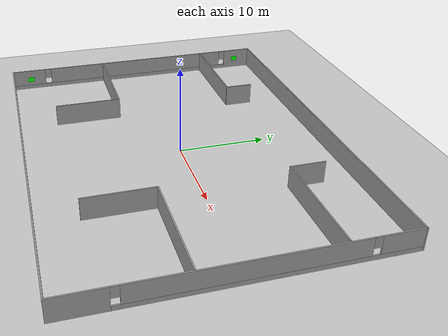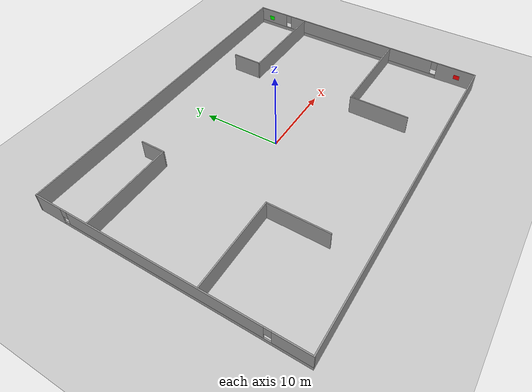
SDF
<sdf version="1.7">
 <world name="default">
  <light name="sun" type="directional">
   <pose>0 0 10 0 -0 0</pose>
   <diffuse>0.8 0.8 0.8 1</diffuse>
   <specular>0.2 0.2 0.2 1</specular>
   <attenuation>
    <range>1000</range>
    <constant>0.9</constant>
    <linear>0.01</linear>
    <quadratic>0.001</quadratic>
   </attenuation>
   <direction>-0.5 0.1 -0.9</direction>
   <spot><inner_angle>0</inner_angle><outer_angle>0</outer_angle><falloff>0</falloff></spot>
  </light>
  <model name="ground_plane">
   <static>1</static>
   <link name="link">
    <collision name="collision">
     <geometry><plane><normal>0 0 1</normal><size>100 100</size></plane></geometry>
     <surface><friction><ode><mu>100</mu><mu2>50</mu2></ode></friction></surface>
    </collision>
    <visual name="visual">
     <cast_shadows>0</cast_shadows>
     <geometry><plane><normal>0 0 1</normal><size>100 100</size></plane></geometry>
     <material>
      <script><uri>file://media/materials/scripts/gazebo.material</uri><name>Gazebo/Grey</name></script>
     </material>
    </visual>
   </link>
  </model>
  <gravity>0 0 -9.8</gravity>
  <magnetic_field>6e-06 2.3e-05 -4.2e-05</magnetic_field>
  <atmosphere type="adiabatic"/>
  <physics type="ode">
   <max_step_size>0.001</max_step_size>
   <real_time_factor>1</real_time_factor>
   <real_time_update_rate>1000</real_time_update_rate>
  </physics>
  <scene><ambient>0.4 0.4 0.4 1</ambient><background>0.7 0.7 0.7 1</background><shadows>1</shadows></scene>
  <audio><device>default</device></audio>
  <spherical_coordinates>
   <surface_model>EARTH_WGS84</surface_model>
   <latitude_deg>0</latitude_deg>
   <longitude_deg>0</longitude_deg>
   <elevation>0</elevation>
   <heading_deg>0</heading_deg>
  </spherical_coordinates>
  <model name="base_factory">
   <pose>0.4434 -0.470209 0 0 0 0</pose>
   <link name="Wall_10">
    <pose>22.175 -1e-06 0 0 -0 1.5708</pose>
    <visual name="Wall_10_Visual_0">
     <pose>-14.1405 0 1.25 0 -0 0</pose>
     <geometry><box><size>5.21896 0.15 2.5</size></box></geometry>
     <material>
      <script><uri>file://media/materials/scripts/gazebo.material</uri><name>Gazebo/Grey</name></script>
      <ambient>1 1 1 1</ambient>
     </material>
     <meta><layer>0</layer></meta>
    </visual>
    <collision name="Wall_10_Collision_0">
     <geometry><box><size>5.21896 0.15 2.5</size></box></geometry>
     <pose>-14.1405 0 1.25 0 -0 0</pose>
    </collision>
    <visual name="Wall_10_Visual_1">
     <pose>2.60948 0 0.25 0 -0 0</pose>
     <geometry><box><size>28.281 0.15 0.5</size></box></geometry>
     <material>
      <script><uri>file://media/materials/scripts/gazebo.material</uri><name>Gazebo/Grey</name></script>
      <ambient>1 1 1 1</ambient>
     </material>
     <meta><layer>0</layer></meta>
    </visual>
    <collision name="Wall_10_Collision_1">
     <geometry><box><size>28.281 0.15 0.5</size></box></geometry>
     <pose>2.60948 0 0.25 0 -0 0</pose>
    </collision>
    <visual name="Wall_10_Visual_2">
     <pose>0.411134 0 1.5 0 -0 0</pose>
     <geometry><box><size>22.2843 0.15 2</size></box></geometry>
     <material>
      <script><uri>file://media/materials/scripts/gazebo.material</uri><name>Gazebo/Grey</name></script>
      <ambient>1 1 1 1</ambient>
     </material>
     <meta><layer>0</layer></meta>
    </visual>
    <collision name="Wall_10_Collision_2">
     <geometry><box><size>22.2843 0.15 2</size></box></geometry>
     <pose>0.411134 0 1.5 0 -0 0</pose>
    </collision>
    <visual name="Wall_10_Visual_3">
     <pose>14.5517 0 1.5 0 -0 0</pose>
     <geometry><box><size>4.39669 0.15 2</size></box></geometry>
     <material>
      <script><uri>file://media/materials/scripts/gazebo.material</uri><name>Gazebo/Grey</name></script>
      <ambient>1 1 1 1</ambient>
     </material>
     <meta><layer>0</layer></meta>
    </visual>
    <collision name="Wall_10_Collision_3">
     <geometry><box><size>4.39669 0.15 2</size></box></geometry>
     <pose>14.5517 0 1.5 0 -0 0</pose>
    </collision>
    <visual name="Wall_10_Visual_4">
     <pose>-11.131 0 1.9 0 -0 0</pose>
     <geometry><box><size>0.8 0.15 1.2</size></box></geometry>
     <material>
      <script><uri>file://media/materials/scripts/gazebo.material</uri><name>Gazebo/Grey</name></script>
      <ambient>1 1 1 1</ambient>
     </material>
     <meta><layer>0</layer></meta>
    </visual>
    <collision name="Wall_10_Collision_4">
     <geometry><box><size>0.8 0.15 1.2</size></box></geometry>
     <pose>-11.131 0 1.9 0 -0 0</pose>
    </collision>
    <visual name="Wall_10_Visual_5">
     <pose>11.9533 0 1.9 0 -0 0</pose>
     <geometry><box><size>0.8 0.15 1.2</size></box></geometry>
     <material>
      <script><uri>file://media/materials/scripts/gazebo.material</uri><name>Gazebo/Grey</name></script>
      <ambient>1 1 1 1</ambient>
     </material>
     <meta><layer>0</layer></meta>
    </visual>
    <collision name="Wall_10_Collision_5">
     <geometry><box><size>0.8 0.15 1.2</size></box></geometry>
     <pose>11.9533 0 1.9 0 -0 0</pose>
    </collision>
   </link>
   <link name="Wall_11">
    <collision name="Wall_11_Collision">
     <geometry><box><size>44.5 0.15 2.5</size></box></geometry>
     <pose>0 0 1.25 0 -0 0</pose>
    </collision>
    <visual name="Wall_11_Visual">
     <pose>0 0 1.25 0 -0 0</pose>
     <geometry><box><size>44.5 0.15 2.5</size></box></geometry>
     <material>
      <script><uri>file://media/materials/scripts/gazebo.material</uri><name>Gazebo/Grey</name></script>
      <ambient>1 1 1 1</ambient>
     </material>
     <meta><layer>0</layer></meta>
    </visual>
    <pose>1e-06 16.675 0 0 -0 3.14159</pose>
   </link>
   <link name="Wall_12">
    <pose>-22.175 -1e-06 0 0 -0 -1.5708</pose>
    <visual name="Wall_12_Visual_0">
     <pose>-14.8986 0 1.25 0 -0 0</pose>
     <geometry><box><size>3.70277 0.15 2.5</size></box></geometry>
     <material>
      <script><uri>file://media/materials/scripts/gazebo.material</uri><name>Gazebo/Grey</name></script>
      <ambient>1 1 1 1</ambient>
     </material>
     <meta><layer>0</layer></meta>
    </visual>
    <collision name="Wall_12_Collision_0">
     <geometry><box><size>3.70277 0.15 2.5</size></box></geometry>
     <pose>-14.8986 0 1.25 0 -0 0</pose>
    </collision>
    <visual name="Wall_12_Visual_1">
     <pose>1.85139 0 0.25 0 -0 0</pose>
     <geometry><box><size>29.7972 0.15 0.5</size></box></geometry>
     <material>
      <script><uri>file://media/materials/scripts/gazebo.material</uri><name>Gazebo/Grey</name></script>
      <ambient>1 1 1 1</ambient>
     </material>
     <meta><layer>0</layer></meta>
    </visual>
    <collision name="Wall_12_Collision_1">
     <geometry><box><size>29.7972 0.15 0.5</size></box></geometry>
     <pose>1.85139 0 0.25 0 -0 0</pose>
    </collision>
    <visual name="Wall_12_Visual_2">
     <pose>-0.27235 0 1.5 0 -0 0</pose>
     <geometry><box><size>23.9498 0.15 2</size></box></geometry>
     <material>
      <script><uri>file://media/materials/scripts/gazebo.material</uri><name>Gazebo/Grey</name></script>
      <ambient>1 1 1 1</ambient>
     </material>
     <meta><layer>0</layer></meta>
    </visual>
    <collision name="Wall_12_Collision_2">
     <geometry><box><size>23.9498 0.15 2</size></box></geometry>
     <pose>-0.27235 0 1.5 0 -0 0</pose>
    </collision>
    <visual name="Wall_12_Visual_3">
     <pose>14.6263 0 1.5 0 -0 0</pose>
     <geometry><box><size>4.24747 0.15 2</size></box></geometry>
     <material>
      <script><uri>file://media/materials/scripts/gazebo.material</uri><name>Gazebo/Grey</name></script>
      <ambient>1 1 1 1</ambient>
     </material>
     <meta><layer>0</layer></meta>
    </visual>
    <collision name="Wall_12_Collision_3">
     <geometry><box><size>4.24747 0.15 2</size></box></geometry>
     <pose>14.6263 0 1.5 0 -0 0</pose>
    </collision>
    <visual name="Wall_12_Visual_4">
     <pose>-12.6472 0 1.9 0 -0 0</pose>
     <geometry><box><size>0.8 0.15 1.2</size></box></geometry>
     <material>
      <script><uri>file://media/materials/scripts/gazebo.material</uri><name>Gazebo/Grey</name></script>
      <ambient>1 1 1 1</ambient>
     </material>
     <meta><layer>0</layer></meta>
    </visual>
    <collision name="Wall_12_Collision_4">
     <geometry><box><size>0.8 0.15 1.2</size></box></geometry>
     <pose>-12.6472 0 1.9 0 -0 0</pose>
    </collision>
    <visual name="Wall_12_Visual_5">
     <pose>12.1025 0 1.9 0 -0 0</pose>
     <geometry><box><size>0.8 0.15 1.2</size></box></geometry>
     <material>
      <script><uri>file://media/materials/scripts/gazebo.material</uri><name>Gazebo/Grey</name></script>
      <ambient>1 1 1 1</ambient>
     </material>
     <meta><layer>0</layer></meta>
    </visual>
    <collision name="Wall_12_Collision_5">
     <geometry><box><size>0.8 0.15 1.2</size></box></geometry>
     <pose>12.1025 0 1.9 0 -0 0</pose>
    </collision>
   </link>
   <link name="Wall_15">
    <collision name="Wall_15_Collision">
     <geometry><box><size>11.75 0.15 2.5</size></box></geometry>
     <pose>0 0 1.25 0 -0 0</pose>
    </collision>
    <visual name="Wall_15_Visual">
     <pose>0 0 1.25 0 -0 0</pose>
     <geometry><box><size>11.75 0.15 2.5</size></box></geometry>
     <material>
      <script><uri>file://media/materials/scripts/gazebo.material</uri><name>Gazebo/Grey</name></script>
      <ambient>1 1 1 1</ambient>
     </material>
     <meta><layer>0</layer></meta>
    </visual>
    <pose>-16.2849 -4.56195 0 0 -0 0</pose>
   </link>
   <link name="Wall_16">
    <collision name="Wall_16_Collision">
     <geometry><box><size>7.75 0.15 2.5</size></box></geometry>
     <pose>0 0 1.25 0 -0 0</pose>
    </collision>
    <visual name="Wall_16_Visual">
     <pose>0 0 1.25 0 -0 0</pose>
     <geometry><box><size>7.75 0.15 2.5</size></box></geometry>
     <material>
      <script><uri>file://media/materials/scripts/gazebo.material</uri><name>Gazebo/Grey</name></script>
      <ambient>1 1 1 1</ambient>
     </material>
     <meta><layer>0</layer></meta>
    </visual>
    <pose>-10.4849 -8.36195 0 0 -0 -1.5708</pose>
   </link>
   <link name="Wall_25">
    <collision name="Wall_25_Collision">
     <geometry><box><size>7.75 0.15 2.5</size></box></geometry>
     <pose>0 0 1.25 0 -0 0</pose>
    </collision>
    <visual name="Wall_25_Visual">
     <pose>0 0 1.25 0 -0 0</pose>
     <geometry><box><size>7.75 0.15 2.5</size></box></geometry>
     <material>
      <script><uri>file://media/materials/scripts/gazebo.material</uri><name>Gazebo/Grey</name></script>
      <ambient>1 1 1 1</ambient>
     </material>
     <meta><layer>0</layer></meta>
    </visual>
    <pose>9.61511 -8.36195 0 0 -0 1.5708</pose>
   </link>
   <link name="Wall_27">
    <collision name="Wall_27_Collision">
     <geometry><box><size>12.5 0.15 2.5</size></box></geometry>
     <pose>0 0 1.25 0 -0 0</pose>
    </collision>
    <visual name="Wall_27_Visual">
     <pose>0 0 1.25 0 -0 0</pose>
     <geometry><box><size>12.5 0.15 2.5</size></box></geometry>
     <material>
      <script><uri>file://media/materials/scripts/gazebo.material</uri><name>Gazebo/Grey</name></script>
      <ambient>1 1 1 1</ambient>
     </material>
     <meta><layer>0</layer></meta>
    </visual>
    <pose>15.7901 -4.56195 0 0 -0 0</pose>
   </link>
   <link name="Wall_29">
    <collision name="Wall_29_Collision">
     <geometry><box><size>12 0.15 2.5</size></box></geometry>
     <pose>0 0 1.25 0 -0 0</pose>
    </collision>
    <visual name="Wall_29_Visual">
     <pose>0 0 1.25 0 -0 0</pose>
     <geometry><box><size>12 0.15 2.5</size></box></geometry>
     <material>
      <script><uri>file://media/materials/scripts/gazebo.material</uri><name>Gazebo/Grey</name></script>
      <ambient>1 1 1 1</ambient>
     </material>
     <meta><layer>0</layer></meta>
    </visual>
    <pose>-16.2062 9.40894 0 0 -0 0</pose>
   </link>
   <link name="Wall_30">
    <collision name="Wall_30_Collision">
     <geometry><box><size>3.25 0.15 2.5</size></box></geometry>
     <pose>0 0 1.25 0 -0 0</pose>
    </collision>
    <visual name="Wall_30_Visual">
     <pose>0 0 1.25 0 -0 0</pose>
     <geometry><box><size>3.25 0.15 2.5</size></box></geometry>
     <material>
      <script><uri>file://media/materials/scripts/gazebo.material</uri><name>Gazebo/Grey</name></script>
      <ambient>1 1 1 1</ambient>
     </material>
     <meta><layer>0</layer></meta>
    </visual>
    <pose>-10.2812 10.9589 0 0 -0 1.5708</pose>
   </link>
   <link name="Wall_37">
    <collision name="Wall_37_Collision">
     <geometry><box><size>4 0.15 2.5</size></box></geometry>
     <pose>0 0 1.25 0 -0 0</pose>
    </collision>
    <visual name="Wall_37_Visual">
     <pose>0 0 1.25 0 -0 0</pose>
     <geometry><box><size>4 0.15 2.5</size></box></geometry>
     <material>
      <script><uri>file://media/materials/scripts/gazebo.material</uri><name>Gazebo/Grey</name></script>
      <ambient>1 1 1 1</ambient>
     </material>
     <meta><layer>0</layer></meta>
    </visual>
    <pose>9.61511 11.2131 0 0 -0 1.5708</pose>
   </link>
   <link name="Wall_39">
    <collision name="Wall_39_Collision">
     <geometry><box><size>12.5 0.15 2.5</size></box></geometry>
     <pose>0 0 1.25 0 -0 0</pose>
    </collision>
    <visual name="Wall_39_Visual">
     <pose>0 0 1.25 0 -0 0</pose>
     <geometry><box><size>12.5 0.15 2.5</size></box></geometry>
     <material>
      <script><uri>file://media/materials/scripts/gazebo.material</uri><name>Gazebo/Grey</name></script>
      <ambient>1 1 1 1</ambient>
     </material>
     <meta><layer>0</layer></meta>
    </visual>
    <pose>15.7901 9.28805 0 0 -0 0</pose>
   </link>
   <link name="Wall_9">
    <collision name="Wall_9_Collision">
     <geometry><box><size>44.5 0.15 2.5</size></box></geometry>
     <pose>0 0 1.25 0 -0 0</pose>
    </collision>
    <visual name="Wall_9_Visual">
     <pose>0 0 1.25 0 -0 0</pose>
     <geometry><box><size>44.5 0.15 2.5</size></box></geometry>
     <material>
      <script><uri>file://media/materials/scripts/gazebo.material</uri><name>Gazebo/Grey</name></script>
      <ambient>1 1 1 1</ambient>
     </material>
     <meta><layer>0</layer></meta>
    </visual>
    <pose>1e-06 -16.675 0 0 -0 0</pose>
   </link>
   <link name="room_sw_marker">
    <pose>-22.09 -14.4185 1.25 0 -0 1.5708</pose>
    <visual name="visual">
     <geometry><box><size>0.8 0.015 0.6</size></box></geometry>
     <material><ambient>0 1 0 1</ambient><diffuse>0 1 0 1</diffuse></material>
    </visual>
   </link>
   <link name="room_se_marker">
    <pose>22.09 -14.4185 1.25 0 -0 1.5708</pose>
    <visual name="visual">
     <geometry><box><size>0.8 0.015 0.6</size></box></geometry>
     <material><ambient>1 0 0 1</ambient><diffuse>1 0 0 1</diffuse></material>
    </visual>
   </link>
   <link name="room_nw_marker">
    <pose>-22.09 14.592 1.25 0 -0 1.5708</pose>
    <visual name="visual">
     <geometry><box><size>0.8 0.015 0.6</size></box></geometry>
     <material><ambient>0 1 0 1</ambient><diffuse>0 1 0 1</diffuse></material>
    </visual>
   </link>
   <link name="room_ne_marker">
    <pose>22.09 14.9066 1.25 0 -0 1.5708</pose>
    <visual name="visual">
     <geometry><box><size>0.8 0.015 0.6</size></box></geometry>
     <material><ambient>0 1 0 1</ambient><diffuse>0 1 0 1</diffuse></material>
    </visual>
   </link>
   <static>1</static>
  </model>
 </world>
</sdf>
